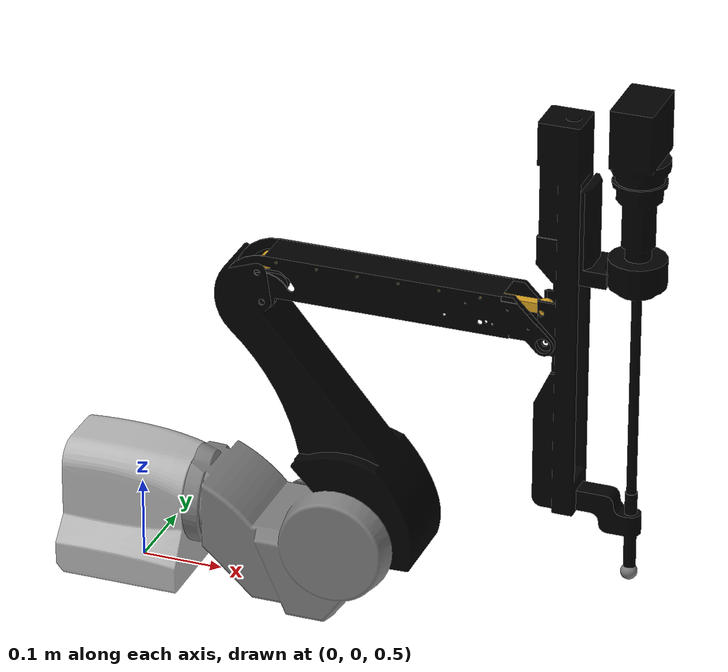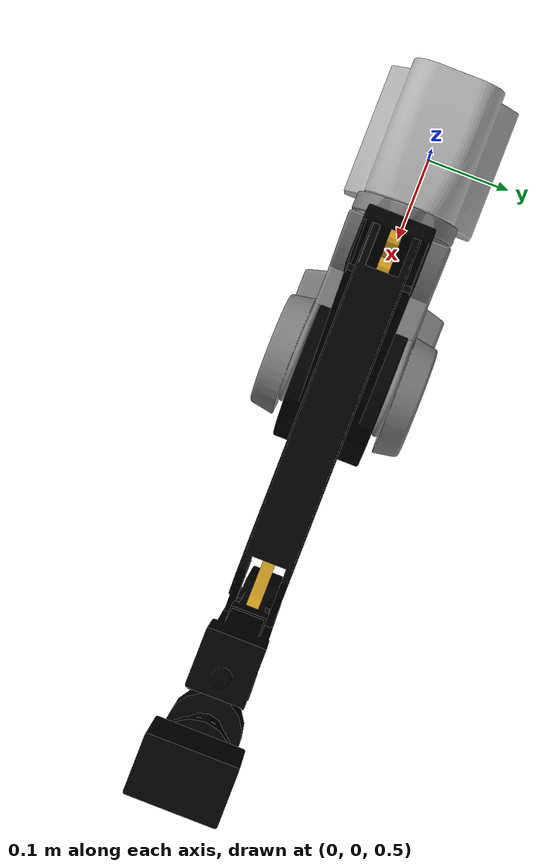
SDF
<sdf version="1.6">
  <model name="psm">

  <include>
    <uri>model://ECM</uri>
      <name>ECM</name>
      <pose>0 0 0.5 0 0 0</pose>
  </include>

  <joint name='ECM::fixed' type='fixed'>
    <child>ECM::base_link</child>
    <parent>world</parent>
  </joint>

 <plugin name='dvrk_plugins' filename='libdvrk_plugins.so'/>
 </model>
</sdf>

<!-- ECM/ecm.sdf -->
<sdf version='1.6'>
  <model name='ecm'>
    <link name='base_link'>
      <pose frame=''>0 0 0 0 -0 0</pose>
      <inertial>
        <pose frame=''>-0.003775 -3e-05 0.069014 0 -0 0</pose>
        <mass>2.64078</mass>
        <inertia>
          <ixx>4.76582e-06</ixx>
          <ixy>-8.19632e-08</ixy>
          <ixz>-9.01608e-05</ixz>
          <iyy>0.00171045</iyy>
          <iyz>-4.3325e-09</iyz>
          <izz>0.00170568</izz>
        </inertia>
      </inertial>
      <collision name='base_link_collision'>
        <pose frame=''>0 0 0 0 -0 0</pose>
        <geometry>
          <mesh>
            <scale>1 1 1</scale>
            <uri>model://ECM//meshes/base_link.STL</uri>
          </mesh>
        </geometry>
      </collision>
      <collision name='base_link_fixed_joint_lump__remote_center_link_collision_1'>
        <pose frame=''>0.612599 0 0.101595 -0 0 -1.5708</pose>
        <geometry>
          <mesh>
            <scale>1 1 1</scale>
            <uri>model://ECM//meshes/remote_center_link.STL</uri>
          </mesh>
        </geometry>
      </collision>
      <visual name='base_link_visual'>
        <pose frame=''>0 0 0 0 -0 0</pose>
        <geometry>
          <mesh>
            <scale>1 1 1</scale>
            <uri>model://ECM//meshes/base_link.STL</uri>
          </mesh>
        </geometry>
      </visual>
      <visual name='base_link_fixed_joint_lump__remote_center_link_visual_1'>
        <pose frame=''>0.612599 0 0.101595 -0 0 -1.5708</pose>
        <geometry>
          <mesh>
            <scale>1 1 1</scale>
            <uri>model://ECM//meshes/remote_center_link.STL</uri>
          </mesh>
        </geometry>
        <material>
          <ambient>0.5 0.5 0.5 1</ambient>
          <diffuse>0.5 0.5 0.5 1</diffuse>
          <specular>0.1 0.1 0.1 1</specular>
          <emissive>0.5 0.5 0.5 1</emissive>
        </material>
      </visual>
    </link>
    <link name='yaw_link'>
      <pose frame=''>0.0732 0 0.10146 1.5708 -0 1.5708</pose>
      <inertial>
        <pose frame=''>0 0 0.10669 0 -0 0</pose>
        <mass>6.4168</mass>
        <inertia>
          <ixx>0.1181</ixx>
          <ixy>0</ixy>
          <ixz>0</ixz>
          <iyy>0.1133</iyy>
          <iyz>-0.0249</iyz>
          <izz>0.0286</izz>
        </inertia>
      </inertial>
      <collision name='yaw_link_collision'>
        <pose frame=''>0 0 0 0 -0 0</pose>
        <geometry>
          <mesh>
            <scale>1 1 1</scale>
            <uri>model://ECM//meshes/yaw_link.STL</uri>
          </mesh>
        </geometry>
      </collision>
      <visual name='yaw_link_visual'>
        <pose frame=''>0 0 0 0 -0 0</pose>
        <geometry>
          <mesh>
            <scale>1 1 1</scale>
            <uri>model://ECM//meshes/yaw_link.STL</uri>
          </mesh>
        </geometry>
        <material>
          <ambient>0.5 0.5 0.5 1</ambient>
          <diffuse>0.5 0.5 0.5 1</diffuse>
          <specular>0.5 0.5 0.5 1</specular>
          <emissive>0.5 0.5 0.5 1</emissive>
        </material>
      </visual>
    </link>
    <joint name='yaw_joint' type='revolute'>
      <child>yaw_link</child>
      <parent>base_link</parent>
      <axis>
        <xyz>-1 0 0</xyz>
        <limit>
          <lower>-1.5708</lower>
          <upper>1.5708</upper>
        </limit>
        <dynamics>
          <spring_reference>0</spring_reference>
          <spring_stiffness>0.1</spring_stiffness>
          <damping>0</damping>
        </dynamics>
        <use_parent_model_frame>1</use_parent_model_frame>
      </axis>
    </joint>
    <link name='pitch_back_link'>
      <pose frame=''>0.23563 0 0.09166 -1.57239 0 0</pose>
      <inertial>
        <pose frame=''>-0.032853 -0.14997 -0.008061 0 -0 0</pose>
        <mass>0.4214</mass>
        <inertia>
          <ixx>0.0119</ixx>
          <ixy>0.0051</ixy>
          <ixz>-0.0003</ixz>
          <iyy>0.0025</iyy>
          <iyz>-0.0006</iyz>
          <izz>0.0141</izz>
        </inertia>
      </inertial>
      <collision name='pitch_back_link_collision'>
        <pose frame=''>0 0 0 0 -0 0</pose>
        <geometry>
          <mesh>
            <scale>1 1 1</scale>
            <uri>model://ECM//meshes/pitch_back_link.STL</uri>
          </mesh>
        </geometry>
      </collision>
      <visual name='pitch_back_link_visual'>
        <pose frame=''>0 0 0 0 -0 0</pose>
        <geometry>
          <mesh>
            <scale>1 1 1</scale>
            <uri>model://ECM//meshes/pitch_back_link.STL</uri>
          </mesh>
        </geometry>
        <material>
          <ambient>0.85 0.64 0.125 1</ambient>
          <diffuse>0.85 0.64 0.125 1</diffuse>
          <specular>0.1 0.1 0.1 1</specular>
          <emissive>0.85 0.64 0.125 1</emissive>
        </material>
      </visual>
    </link>
    <joint name='pitch_back_joint' type='revolute'>
      <child>pitch_back_link</child>
      <parent>yaw_link</parent>
      <axis>
        <xyz>-0 0.999999 -0.001593</xyz>
        <limit>
          <lower>-0.785398</lower>
          <upper>1.157657</upper>
        </limit>
        <dynamics>
          <spring_reference>0</spring_reference>
          <spring_stiffness>0.1</spring_stiffness>
          <damping>0</damping>
        </dynamics>
        <use_parent_model_frame>1</use_parent_model_frame>
      </axis>
    </joint>
    <link name='pitch_front_link'>
      <pose frame=''>0.2722 0 0.10146 -1.57239 0 0</pose>
      <inertial>
        <pose frame=''>-0.030619 -0.13578 -0 0 -0 0</pose>
        <mass>1.6069</mass>
        <inertia>
          <ixx>0.0515</ixx>
          <ixy>-0.0158</ixy>
          <ixz>-0.0022</ixz>
          <iyy>-0.0152</iyy>
          <iyz>0.0111</iyz>
          <izz>0.0546</izz>
        </inertia>
      </inertial>
      <collision name='pitch_front_link_collision'>
        <pose frame=''>0 0 0 0 -0 0</pose>
        <geometry>
          <mesh>
            <scale>1 1 1</scale>
            <uri>model://ECM//meshes/pitch_front_link.STL</uri>
          </mesh>
        </geometry>
      </collision>
      <visual name='pitch_front_link_visual'>
        <pose frame=''>0 0 0 0 -0 0</pose>
        <geometry>
          <mesh>
            <scale>1 1 1</scale>
            <uri>model://ECM//meshes/pitch_front_link.STL</uri>
          </mesh>
        </geometry>
        <material>
          <ambient>0 0 0 1</ambient>
          <diffuse>0 0 0 1</diffuse>
          <specular>0.1 0.1 0.1 1</specular>
          <emissive>0 0 0 1</emissive>
        </material>
      </visual>
    </link>
    <joint name='pitch_front_joint' type='revolute'>
      <child>pitch_front_link</child>
      <parent>yaw_link</parent>
      <axis>
        <xyz>-0 0.999999 -0.001593</xyz>
        <limit>
          <lower>-0.785398</lower>
          <upper>1.157657</upper>
        </limit>
        <dynamics>
          <spring_reference>0</spring_reference>
          <spring_stiffness>0.1</spring_stiffness>
          <damping>0</damping>
        </dynamics>
        <use_parent_model_frame>1</use_parent_model_frame>
      </axis>
    </joint>
    <link name='pitch_bottom_link'>
      <pose frame=''>0.169199 0.000457 0.388265 -1.57239 0 0</pose>
      <inertial>
        <pose frame=''>0.14594 -0.026715 -0.000165 0 -0 0</pose>
        <mass>0.35928</mass>
        <inertia>
          <ixx>0.00023901</ixx>
          <ixy>0.00022767</ixy>
          <ixz>-3.8706e-06</ixz>
          <iyy>0.0030096</iyy>
          <iyz>-7.279e-07</iyz>
          <izz>0.0029617</izz>
        </inertia>
      </inertial>
      <collision name='pitch_bottom_link_collision'>
        <pose frame=''>0 0 0 0 -0 0</pose>
        <geometry>
          <mesh>
            <scale>1 1 1</scale>
            <uri>model://ECM//meshes/pitch_bottom_link.STL</uri>
          </mesh>
        </geometry>
      </collision>
      <visual name='pitch_bottom_link_visual'>
        <pose frame=''>0 0 0 0 -0 0</pose>
        <geometry>
          <mesh>
            <scale>1 1 1</scale>
            <uri>model://ECM//meshes/pitch_bottom_link.STL</uri>
          </mesh>
        </geometry>
        <material>
          <ambient>0 0 0 1</ambient>
          <diffuse>0 0 0 1</diffuse>
          <specular>0.1 0.1 0.1 1</specular>
          <emissive>0 0 0 1</emissive>
        </material>
      </visual>
    </link>
    <joint name='pitch_bottom_joint' type='revolute'>
      <child>pitch_bottom_link</child>
      <parent>pitch_front_link</parent>
      <axis>
        <xyz>-0 0.999999 -0.001593</xyz>
        <limit>
          <lower>-0.785398</lower>
          <upper>1.157657</upper>
        </limit>
        <dynamics>
          <spring_reference>0</spring_reference>
          <spring_stiffness>0.1</spring_stiffness>
          <damping>0</damping>
        </dynamics>
        <use_parent_model_frame>1</use_parent_model_frame>
      </axis>
    </joint>
    <link name='pitch_end_link'>
      <pose frame=''>0.509599 0.000457 0.3884 -1.57239 0 0</pose>
      <inertial>
        <pose frame=''>0.018122 -0.027143 0.000789 0 -0 0</pose>
        <mass>0.7526</mass>
        <inertia>
          <ixx>0.0981</ixx>
          <ixy>0.0622</ixy>
          <ixz>0.0050</ixz>
          <iyy>0.0531</iyy>
          <iyz>0.0061</iyz>
          <izz>0.1499</izz>
        </inertia>
      </inertial>
      <collision name='pitch_end_link_collision'>
        <pose frame=''>0 0 0 0 -0 0</pose>
        <geometry>
          <mesh>
            <scale>1 1 1</scale>
            <uri>model://ECM//meshes/pitch_end_link.STL</uri>
          </mesh>
        </geometry>
      </collision>
      <visual name='pitch_end_link_visual'>
        <pose frame=''>0 0 0 0 -0 0</pose>
        <geometry>
          <mesh>
            <scale>1 1 1</scale>
            <uri>model://ECM//meshes/pitch_end_link.STL</uri>
          </mesh>
        </geometry>
        <material>
          <ambient>0 0 0 1</ambient>
          <diffuse>0 0 0 1</diffuse>
          <specular>0.1 0.1 0.1 1</specular>
          <emissive>0 0 0 1</emissive>
        </material>
      </visual>
    </link>
    <joint name='pitch_end_joint' type='revolute'>
      <child>pitch_end_link</child>
      <parent>pitch_bottom_link</parent>
      <axis>
        <xyz>-0 0.999999 -0.001593</xyz>
        <limit>
          <lower>-0.785398</lower>
          <upper>1.157657</upper>
        </limit>
        <dynamics>
          <spring_reference>0</spring_reference>
          <spring_stiffness>0.1</spring_stiffness>
          <damping>0</damping>
        </dynamics>
        <use_parent_model_frame>1</use_parent_model_frame>
      </axis>
    </joint>
    <link name='main_insertion_link'>
      <pose frame=''>0.551599 0.000594 0.474543 3.14 0 0</pose>
      <inertial>
        <pose frame=''>0.008617 -0.000792 -0.047928 0 -0 0</pose>
        <mass>0.23108</mass>
        <inertia>
          <ixx>0.0398</ixx>
          <ixy>0.0284</ixy>
          <ixz>0</ixz>
          <iyy>0.0206</iyy>
          <iyz>0</iyz>
          <izz>0.0602</izz>
        </inertia>
      </inertial>
      <collision name='main_insertion_link_collision'>
        <pose frame=''>0 0 0 0 -0 0</pose>
        <geometry>
          <mesh>
            <scale>1 1 1</scale>
            <uri>model://ECM//meshes/main_insertion_link.STL</uri>
          </mesh>
        </geometry>
      </collision>
      <visual name='main_insertion_link_visual'>
        <pose frame=''>0 0 0 0 -0 0</pose>
        <geometry>
          <mesh>
            <scale>1 1 1</scale>
            <uri>model://ECM//meshes/main_insertion_link.STL</uri>
          </mesh>
        </geometry>
        <material>
          <ambient>0 0 0 1</ambient>
          <diffuse>0 0 0 1</diffuse>
          <specular>0.1 0.1 0.1 1</specular>
          <emissive>0 0 0 1</emissive>
        </material>
      </visual>
    </link>
    <joint name='main_insertion_joint' type='prismatic'>
      <child>main_insertion_link</child>
      <parent>pitch_end_link</parent>
      <axis>
        <xyz>-0 -0.001596 -0.999999</xyz>
        <limit>
          <lower>0</lower>
          <upper>0.35</upper>
          <effort>50</effort>
          <velocity>100</velocity>
        </limit>
        <dynamics>
          <spring_reference>0</spring_reference>
          <spring_stiffness>0.1</spring_stiffness>
          <damping>0</damping>
        </dynamics>
        <use_parent_model_frame>1</use_parent_model_frame>
      </axis>
    </joint>
    <link name='tool_link'>
      <pose frame=''>0.612599 0.000594 0.474543 3.14 0 0</pose>
      <inertial>
        <pose frame=''>0 -0.000793 -0.10732 0 -0 0</pose>
        <mass>1.9074</mass>
        <inertia>
          <ixx>0.4617</ixx>
          <ixy>0.3228</ixy>
          <ixz>0</ixz>
          <iyy>0.2372</iyy>
          <iyz>0</iyz>
          <izz>0.6977</izz>
        </inertia>
      </inertial>
      <collision name='tool_link_collision'>
        <pose frame=''>0 0 0 0 -0 0</pose>
        <geometry>
          <mesh>
            <scale>1 1 1</scale>
            <uri>model://ECM//meshes/tool_link.STL</uri>
          </mesh>
        </geometry>
      </collision>
      <visual name='tool_link_visual'>
        <pose frame=''>0 0 0 0 -0 0</pose>
        <geometry>
          <mesh>
            <scale>1 1 1</scale>
            <uri>model://ECM//meshes/tool_link.STL</uri>
          </mesh>
        </geometry>
        <material>
          <ambient>0 0 0 1</ambient>
          <diffuse>0 0 0 1</diffuse>
          <specular>0.1 0.1 0.1 1</specular>
          <emissive>0 0 0 1</emissive>
        </material>
      </visual>
    </link>
    <joint name='tool_joint' type='revolute'>
      <child>tool_link</child>
      <parent>main_insertion_link</parent>
      <axis>
        <xyz>0 0.001596 0.999999</xyz>
        <limit>
          <lower>-3.1415</lower>
          <upper>3.1415</upper>
        </limit>
        <dynamics>
          <spring_reference>0</spring_reference>
          <spring_stiffness>0.1</spring_stiffness>
          <damping>0</damping>
        </dynamics>
        <use_parent_model_frame>1</use_parent_model_frame>
      </axis>
    </joint>
    <link name='pitch_top_link'>
      <pose frame=''>0.163728 0.000516 0.425717 -1.57239 0 0</pose>
      <inertial>
        <pose frame=''>0.1702 -6.8e-05 0.000793 0 -0 0</pose>
        <mass>0.43851</mass>
        <inertia>
          <ixx>0.000027</ixx>
          <ixy>0</ixy>
          <ixz>0.000448</ixz>
          <iyy>0.017408</iyy>
          <iyz>0</iyz>
          <izz>0.017393</izz>
        </inertia>
      </inertial>
      <collision name='pitch_top_link_collision'>
        <pose frame=''>0 0 0 0 -0 0</pose>
        <geometry>
          <mesh>
            <scale>1 1 1</scale>
            <uri>model://ECM//meshes/pitch_top_link.STL</uri>
          </mesh>
        </geometry>
      </collision>
      <visual name='pitch_top_link_visual'>
        <pose frame=''>0 0 0 0 -0 0</pose>
        <geometry>
          <mesh>
            <scale>1 1 1</scale>
            <uri>model://ECM//meshes/pitch_top_link.STL</uri>
          </mesh>
        </geometry>
        <material>
          <ambient>0.85 0.64 0.125 1</ambient>
          <diffuse>0.85 0.64 0.125 1</diffuse>
          <specular>0.1 0.1 0.1 1</specular>
          <emissive>0.85 0.64 0.125 1</emissive>
        </material>
      </visual>
    </link>
    <joint name='pitch_top_joint' type='revolute'>
      <child>pitch_top_link</child>
      <parent>pitch_front_link</parent>
      <axis>
        <xyz>-0 0.999999 -0.001593</xyz>
        <limit>
          <lower>-0.785398</lower>
          <upper>1.157657</upper>
        </limit>
        <dynamics>
          <spring_reference>0</spring_reference>
          <spring_stiffness>0.1</spring_stiffness>
          <damping>0</damping>
        </dynamics>
        <use_parent_model_frame>1</use_parent_model_frame>
      </axis>
    </joint>
    <joint name='pitch_bottom_back_joint' type='revolute'>
      <child>pitch_bottom_link</child>
      <parent>pitch_back_link</parent>
      <pose> -0.0365687 0.0097841 0 0 0 0</pose>
      <axis>
        <xyz>-0 0.999999 -0.001593</xyz>
        <limit>
          <lower>-0.785398</lower>
          <upper>1.157657</upper>
        </limit>
        <dynamics>
          <spring_reference>0</spring_reference>
          <spring_stiffness>0</spring_stiffness>
        </dynamics>
        <use_parent_model_frame>1</use_parent_model_frame>
      </axis>
    </joint>
    <joint name='pitch_top_end_joint' type='revolute'>
      <child>pitch_end_link</child>
      <parent>pitch_top_link</parent>
      <pose> -0.0045766 -0.0375723 0 0 0 0</pose>
      <axis>
        <xyz>-0 0.999999 -0.001593</xyz>
        <limit>
          <lower>-0.785398</lower>
          <upper>1.157657</upper>
        </limit>
        <dynamics>
          <spring_reference>0</spring_reference>
          <spring_stiffness>0.1</spring_stiffness>
          <damping>0</damping>
        </dynamics>
        <use_parent_model_frame>1</use_parent_model_frame>
      </axis>
    </joint>
    <link name='camera_link'>
      <pose frame=''>0.612599 0 0.100895 0 0 -1.5708</pose>
      <inertial>
        <pose frame=''>0 0 0 0 0 0</pose>
        <mass>0.00001</mass>
        <inertia>
          <ixx>0</ixx>
          <ixy>0</ixy>
          <ixz>0</ixz>
          <iyy>0</iyy>
          <iyz>0</iyz>
          <izz>0</izz>
        </inertia>
      </inertial>

      <sensor type="multicamera" name="stereo_camera">
        <update_rate>30.0</update_rate>
        <camera name="left">
          <pose>0 0.01 0 0 0 0</pose>
          <horizontal_fov>1.3962634</horizontal_fov>
          <image>ostopu
            <width>800</width>
            <height>800</height>
            <format>R8G8B8</format>
          </image>
          <clip>
            <near>0.02</near>
            <far>300</far>
          </clip>
          <noise>
            <type>gaussian</type>
            <mean>0.0</mean>
            <stddev>0.007</stddev>
          </noise>
        </camera>
        <camera name="right">
          <pose>0 -0.01 0 0 0 0</pose>
          <horizontal_fov>1.3962634</horizontal_fov>
          <image>
            <width>800</width>
            <height>800</height>
            <format>R8G8B8</format>
          </image>
          <clip>
            <near>0.02</near>
            <far>300</far>
          </clip>
          <noise>
            <type>gaussian</type>
            <mean>0.0</mean>
            <stddev>0.007</stddev>
          </noise>
        </camera>
        <plugin name="stereo_camera_controller" filename="libgazebo_ros_multicamera.so">
          <alwaysOn>true</alwaysOn>
          <updateRate>0.0</updateRate>
          <cameraName>/ecm/camera</cameraName>
          <imageTopicName>image_raw</imageTopicName>
          <cameraInfoTopicName>camera_info</cameraInfoTopicName>
          <robotNamespace></robotNamespace>
          <frameName>left_camera_optical_frame</frameName>
          <hackBaseline>0.07</hackBaseline>
          <distortionK1>0.0</distortionK1>
          <distortionK2>0.0</distortionK2>
          <distortionK3>0.0</distortionK3>
          <distortionT1>0.0</distortionT1>
          <distortionT2>0.0</distortionT2>
        </plugin>
      </sensor>

    </link>
    <joint name='camera_joint' type='fixed'>
      <child>camera_link</child>
      <parent>tool_link</parent>
    </joint>

  </model>
</sdf>
